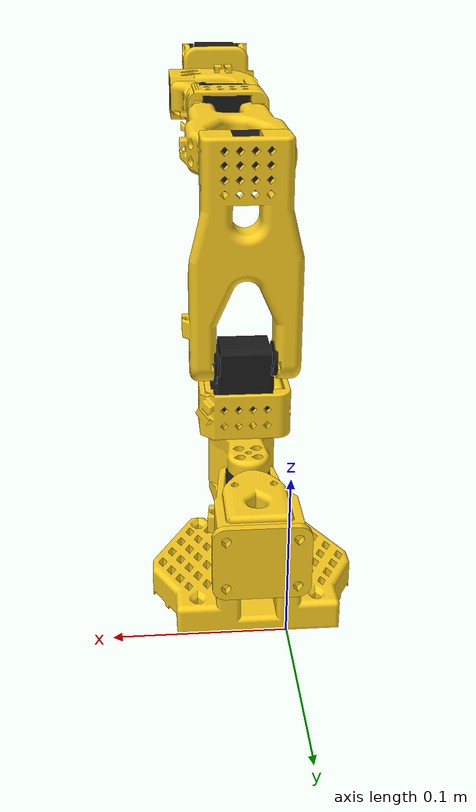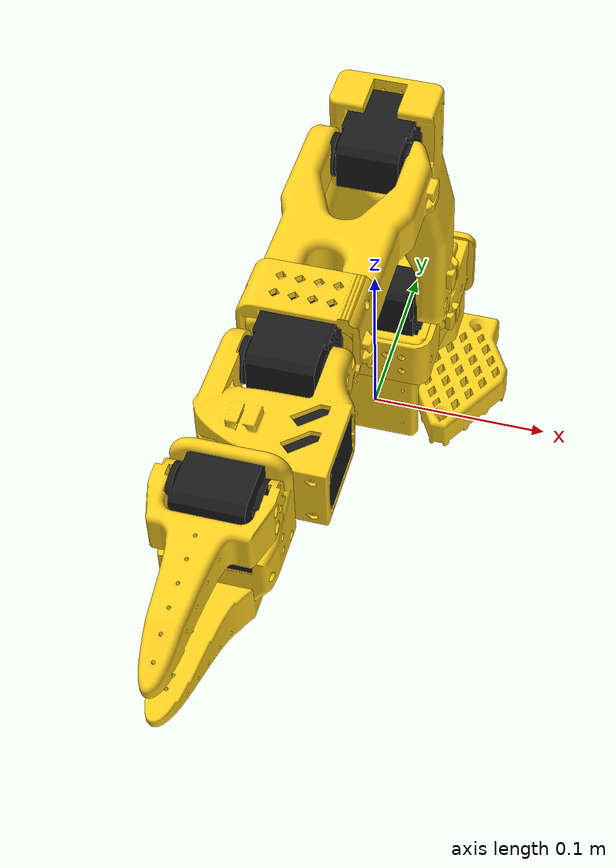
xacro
<?xml version="1.0"?>
<robot xmlns:xacro="http://www.ros.org/wiki/xacro" name="so101_new_calib">
    <xacro:arg name="initial_positions_file" default="initial_positions.yaml" />

    <!-- Import so101_new_calib urdf file -->
    <xacro:include filename="$(find so101)/urdf/so101_new_calib.urdf" />

    <!-- Import control_xacro -->
    <xacro:include filename="so101_new_calib.ros2_control.xacro" />

    <xacro:so101_new_calib_ros2_control name="FakeSystem" initial_positions_file="$(arg initial_positions_file)"/>

</robot>

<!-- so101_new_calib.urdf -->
<robot name="so101_new_calib">
  <!--Generated by RobotCAD, a ROS Workbench for FreeCAD (https://github.com/drfenixion/freecad.robotcad)-->
    <link name="world"/>
  <joint name="base_fixed_to_world" type="fixed">
    <parent link="world"/>
    <child link="base"/>
    <origin xyz="0 0 0" rpy="0 0 0"/>
  </joint>
  <link name="base">
    <visual>
      <!--visual_base_/base_visual.-->
      <origin rpy="1.5708000000000002 0 0" xyz="0.0206915 0.0221255 0.0300817"/>
      <geometry>
        <mesh filename="package://so101/meshes/base_motor_holder_so101_v1_stl.dae"/>
      </geometry>
    </visual>
    <visual>
      <!--visual_base_/base_visual001.-->
      <origin rpy="1.5707999999999998 0 0" xyz="0.0207909 0.0221255 0.0300817"/>
      <geometry>
        <mesh filename="package://so101/meshes/base_so101_v2_stl.dae"/>
      </geometry>
    </visual>
    <visual>
      <!--visual_base_/base_visual002.-->
      <origin rpy="0 0 -1.5708000000000004" xyz="0.0207909 -0.0105745 0.0761817"/>
      <geometry>
        <mesh filename="package://so101/meshes/sts3215_03a_v1_stl.dae"/>
      </geometry>
    </visual>
    <visual>
      <!--visual_base_/base_visual003.-->
      <origin rpy="1.5708000000000002 0 0" xyz="0.0205915 0.0467435 0.0798817"/>
      <geometry>
        <mesh filename="package://so101/meshes/waveshare_mounting_plate_so101_v2_stl.dae"/>
      </geometry>
    </visual>
    <collision>
      <!--col_base_/base_collision.-->
      <origin rpy="1.5708000000000002 0 0" xyz="0.0206915 0.0221255 0.0300817"/>
      <geometry>
        <mesh filename="package://so101/meshes/base_motor_holder_so101_v1_stl.dae"/>
      </geometry>
    </collision>
    <collision>
      <!--col_base_/base_collision001.-->
      <origin rpy="1.5707999999999998 0 0" xyz="0.0207909 0.0221255 0.0300817"/>
      <geometry>
        <mesh filename="package://so101/meshes/base_so101_v2_stl.dae"/>
      </geometry>
    </collision>
    <collision>
      <!--col_base_/base_collision002.-->
      <origin rpy="0 0 -1.5708000000000004" xyz="0.0207909 -0.0105745 0.0761817"/>
      <geometry>
        <mesh filename="package://so101/meshes/sts3215_03a_v1_stl.dae"/>
      </geometry>
    </collision>
    <collision>
      <!--col_base_/base_collision003.-->
      <origin rpy="1.5708000000000002 0 0" xyz="0.0205915 0.0467435 0.0798817"/>
      <geometry>
        <mesh filename="package://so101/meshes/waveshare_mounting_plate_so101_v2_stl.dae"/>
      </geometry>
    </collision>
    <inertial>
      <mass value="0.147"/>
      <origin rpy="0 0 0" xyz="0.020739 0.00204287 0.065966"/>
      <inertia ixx="0.000136117" ixy="4.59787e-07" ixz="9.75275e-08" iyy="0.000114686" iyz="-4.97151e-06" izz="0.000130364"/>
    </inertial>
  </link>
  <link name="shoulder">
    <visual>
      <!--visual_shoulder_/shoulder_visual.-->
      <origin rpy="-1.5707926536217434 1.570792653589793 3.1415926535595684" xyz="-0.0303992 0.000422241 -0.0417"/>
      <geometry>
        <mesh filename="package://so101/meshes/sts3215_03a_v1_stl.dae"/>
      </geometry>
    </visual>
    <visual>
      <!--visual_shoulder_/shoulder_visual001.-->
      <origin rpy="-1.5707926536217436 -1.5707926535897923 3.1415926535746808" xyz="-0.0675992 -0.000177759 0.0158499"/>
      <geometry>
        <mesh filename="package://so101/meshes/motor_holder_so101_base_v1_stl.dae"/>
      </geometry>
    </visual>
    <visual>
      <!--visual_shoulder_/shoulder_visual002.-->
      <origin rpy="-1.5708000000000004 0 0" xyz="0.0122008 2.22413e-05 0.0464"/>
      <geometry>
        <mesh filename="package://so101/meshes/rotation_pitch_so101_v1_stl.dae"/>
      </geometry>
    </visual>
    <collision>
      <!--col_shoulder_/shoulder_collision.-->
      <origin rpy="-1.5707926536217434 1.570792653589793 3.1415926535595684" xyz="-0.0303992 0.000422241 -0.0417"/>
      <geometry>
        <mesh filename="package://so101/meshes/sts3215_03a_v1_stl.dae"/>
      </geometry>
    </collision>
    <collision>
      <!--col_shoulder_/shoulder_collision001.-->
      <origin rpy="-1.5707926536217436 -1.5707926535897923 3.1415926535746808" xyz="-0.0675992 -0.000177759 0.0158499"/>
      <geometry>
        <mesh filename="package://so101/meshes/motor_holder_so101_base_v1_stl.dae"/>
      </geometry>
    </collision>
    <collision>
      <!--col_shoulder_/shoulder_collision002.-->
      <origin rpy="-1.5708000000000004 0 0" xyz="0.0122008 2.22413e-05 0.0464"/>
      <geometry>
        <mesh filename="package://so101/meshes/rotation_pitch_so101_v1_stl.dae"/>
      </geometry>
    </collision>
    <inertial>
      <mass value="0.100006"/>
      <origin rpy="0 0 0" xyz="-0.0307604 -1.66727e-05 -0.0252713"/>
      <inertia ixx="8.3759e-05" ixy="7.55525e-08" ixz="-1.16342e-06" iyy="8.10403e-05" iyz="1.54663e-07" izz="2.39783e-05"/>
    </inertial>
  </link>
  <link name="upper_arm">
    <visual>
      <!--visual_upper_arm_/upper_arm_visual.-->
      <origin rpy="-3.14159 0 -1.5708000000000004" xyz="-0.11257 -0.0155 0.0187"/>
      <geometry>
        <mesh filename="package://so101/meshes/sts3215_03a_v1_stl.dae"/>
      </geometry>
    </visual>
    <visual>
      <!--visual_upper_arm_/upper_arm_visual001.-->
      <origin rpy="3.14159 0 0" xyz="-0.065085 0.012 0.0182"/>
      <geometry>
        <mesh filename="package://so101/meshes/upper_arm_so101_v1_stl.dae"/>
      </geometry>
    </visual>
    <collision>
      <!--col_upper_arm_/upper_arm_collision.-->
      <origin rpy="-3.14159 0 -1.5708000000000004" xyz="-0.11257 -0.0155 0.0187"/>
      <geometry>
        <mesh filename="package://so101/meshes/sts3215_03a_v1_stl.dae"/>
      </geometry>
    </collision>
    <collision>
      <!--col_upper_arm_/upper_arm_collision001.-->
      <origin rpy="3.14159 0 0" xyz="-0.065085 0.012 0.0182"/>
      <geometry>
        <mesh filename="package://so101/meshes/upper_arm_so101_v1_stl.dae"/>
      </geometry>
    </collision>
    <inertial>
      <mass value="0.103"/>
      <origin rpy="0 0 0" xyz="-0.0898471 -0.00838224 0.0184089"/>
      <inertia ixx="4.08002e-05" ixy="-1.97819e-05" ixz="-4.03016e-08" iyy="0.000147318" iyz="8.97326e-09" izz="0.000142487"/>
    </inertial>
  </link>
  <link name="lower_arm">
    <visual>
      <!--visual_lower_arm_/lower_arm_visual.-->
      <origin rpy="-3.1415900000000008 0 0" xyz="-0.0648499 -0.032 0.0182"/>
      <geometry>
        <mesh filename="package://so101/meshes/under_arm_so101_v1_stl.dae"/>
      </geometry>
    </visual>
    <visual>
      <!--visual_lower_arm_/lower_arm_visual001.-->
      <origin rpy="-3.1415900000000008 0 0" xyz="-0.0648499 -0.032 0.018"/>
      <geometry>
        <mesh filename="package://so101/meshes/motor_holder_so101_wrist_v1_stl.dae"/>
      </geometry>
    </visual>
    <visual>
      <!--visual_lower_arm_/lower_arm_visual002.-->
      <origin rpy="-3.14159 0 -3.14159" xyz="-0.1224 0.0052 0.0187"/>
      <geometry>
        <mesh filename="package://so101/meshes/sts3215_03a_v1_stl.dae"/>
      </geometry>
    </visual>
    <collision>
      <!--col_lower_arm_/lower_arm_collision.-->
      <origin rpy="-3.1415900000000008 0 0" xyz="-0.0648499 -0.032 0.0182"/>
      <geometry>
        <mesh filename="package://so101/meshes/under_arm_so101_v1_stl.dae"/>
      </geometry>
    </collision>
    <collision>
      <!--col_lower_arm_/lower_arm_collision001.-->
      <origin rpy="-3.1415900000000008 0 0" xyz="-0.0648499 -0.032 0.018"/>
      <geometry>
        <mesh filename="package://so101/meshes/motor_holder_so101_wrist_v1_stl.dae"/>
      </geometry>
    </collision>
    <collision>
      <!--col_lower_arm_/lower_arm_collision002.-->
      <origin rpy="-3.14159 0 -3.14159" xyz="-0.1224 0.0052 0.0187"/>
      <geometry>
        <mesh filename="package://so101/meshes/sts3215_03a_v1_stl.dae"/>
      </geometry>
    </collision>
    <inertial>
      <mass value="0.104"/>
      <origin rpy="0 0 0" xyz="-0.0980701 0.00324376 0.0182831"/>
      <inertia ixx="2.87438e-05" ixy="7.41152e-06" ixz="1.26409e-06" iyy="0.000159844" iyz="-4.90188e-08" izz="0.00014529"/>
    </inertial>
  </link>
  <link name="wrist">
    <visual>
      <!--visual_wrist_/wrist_visual.-->
      <origin rpy="-1.5707926536217434 1.570792653589793 3.1415926535595684" xyz="0.0 -0.0424 0.0306"/>
      <geometry>
        <mesh filename="package://so101/meshes/sts3215_03a_no_horn_v1_stl.dae"/>
      </geometry>
    </visual>
    <visual>
      <!--visual_wrist_/wrist_visual001.-->
      <origin rpy="1.570792653591519 -1.5707926535897918 -3.1415926535595684" xyz="0.0 -0.028 0.0181"/>
      <geometry>
        <mesh filename="package://so101/meshes/wrist_roll_pitch_so101_v2_stl.dae"/>
      </geometry>
    </visual>
    <collision>
      <!--col_wrist_/wrist_collision.-->
      <origin rpy="-1.5707926536217434 1.570792653589793 3.1415926535595684" xyz="0.0 -0.0424 0.0306"/>
      <geometry>
        <mesh filename="package://so101/meshes/sts3215_03a_no_horn_v1_stl.dae"/>
      </geometry>
    </collision>
    <collision>
      <!--col_wrist_/wrist_collision001.-->
      <origin rpy="1.570792653591519 -1.5707926535897918 -3.1415926535595684" xyz="0.0 -0.028 0.0181"/>
      <geometry>
        <mesh filename="package://so101/meshes/wrist_roll_pitch_so101_v2_stl.dae"/>
      </geometry>
    </collision>
    <inertial>
      <mass value="0.079"/>
      <origin rpy="0 0 0" xyz="-0.000103312 -0.0386143 0.0281156"/>
      <inertia ixx="3.68263e-05" ixy="1.7893e-08" ixz="-5.28128e-08" iyy="2.5391e-05" iyz="3.6412e-06" izz="2.1e-05"/>
    </inertial>
  </link>
  <link name="gripper">
    <visual>
      <!--visual_gripper_/gripper_visual.-->
      <origin rpy="-1.5708000000000004 0 0" xyz="0.0077 0.0001 -0.0234"/>
      <geometry>
        <mesh filename="package://so101/meshes/sts3215_03a_v1_stl.dae"/>
      </geometry>
    </visual>
    <visual>
      <!--visual_gripper_/gripper_visual001.-->
      <origin rpy="-3.1415900000000008 0 0" xyz="0.0 -0.000218214 0.000949706"/>
      <geometry>
        <mesh filename="package://so101/meshes/wrist_roll_follower_so101_v1_stl.dae"/>
      </geometry>
    </visual>
    <collision>
      <!--col_gripper_/gripper_collision.-->
      <origin rpy="-1.5708000000000004 0 0" xyz="0.0077 0.0001 -0.0234"/>
      <geometry>
        <mesh filename="package://so101/meshes/sts3215_03a_v1_stl.dae"/>
      </geometry>
    </collision>
    <collision>
      <!--col_gripper_/gripper_collision001.-->
      <origin rpy="-3.1415900000000008 0 0" xyz="0.0 -0.000218214 0.000949706"/>
      <geometry>
        <mesh filename="package://so101/meshes/wrist_roll_follower_so101_v1_stl.dae"/>
      </geometry>
    </collision>
    <inertial>
      <mass value="0.087"/>
      <origin rpy="0 0 0" xyz="0.000213627 0.000245138 -0.025187"/>
      <inertia ixx="2.75087e-05" ixy="-3.35241e-07" ixz="-5.7352e-06" iyy="4.33657e-05" iyz="-5.17847e-08" izz="3.45059e-05"/>
    </inertial>
  </link>
  <link name="jaw">
    <visual>
      <!--visual_jaw_/jaw_visual.-->
      <origin rpy="0 0 0" xyz="0.0 0.0 0.0189"/>
      <geometry>
        <mesh filename="package://so101/meshes/moving_jaw_so101_v1_stl.dae"/>
      </geometry>
    </visual>
    <collision>
      <!--col_jaw_/jaw_collision.-->
      <origin rpy="0 0 0" xyz="0.0 0.0 0.0189"/>
      <geometry>
        <mesh filename="package://so101/meshes/moving_jaw_so101_v1_stl.dae"/>
      </geometry>
    </collision>
    <inertial>
      <mass value="0.012"/>
      <origin rpy="0 0 0" xyz="-0.00157495 -0.0300244 0.0192755"/>
      <inertia ixx="6.61427e-06" ixy="-3.19807e-07" ixz="-5.90717e-09" iyy="1.89032e-06" iyz="-1.09945e-07" izz="5.28738e-06"/>
    </inertial>
  </link>
  <joint name="_6" type="revolute">
    <parent link="gripper"/>
    <child link="jaw"/>
    <origin rpy="1.5707999999999998 0 0" xyz="0.0202 0.0188 -0.0234"/>
    <axis xyz="0 0 1"/>
    <limit effort="10.0" lower="-0.174533" upper="1.74533" velocity="10.0"/>
  </joint>
  <joint name="_5" type="revolute">
    <parent link="wrist"/>
    <child link="gripper"/>
    <origin rpy="1.5708000000000004 -9.380830012750704e-08 3.14159" xyz="0.0 -0.0611 0.0181"/>
    <axis xyz="0 0 1"/>
    <limit effort="10.0" lower="-2.79253" upper="2.79253" velocity="10.0"/>
  </joint>
  <joint name="_4" type="revolute">
    <parent link="lower_arm"/>
    <child link="wrist"/>
    <origin rpy="0 0 -1.5708000000000004" xyz="-0.1349 0.0052 0.0"/>
    <axis xyz="0 0 1"/>
    <limit effort="10.0" lower="-1.6580600000000003" upper="1.6580600000000003" velocity="10.0"/>
  </joint>
  <joint name="_3" type="revolute">
    <parent link="upper_arm"/>
    <child link="lower_arm"/>
    <origin rpy="0 0 1.5707999999999995" xyz="-0.11257 -0.028 0.0"/>
    <axis xyz="0 0 1"/>
    <limit effort="10.0" lower="-1.74533" upper="1.5708" velocity="10.0"/>
  </joint>
  <joint name="_2" type="revolute">
    <parent link="shoulder"/>
    <child link="upper_arm"/>
    <origin rpy="1.5707926536821932 -1.5707926535897925 3.1415926535595684" xyz="-0.0303992 -0.0182778 -0.0542"/>
    <axis xyz="0 0 1"/>
    <limit effort="10.0" lower="-1.74533" upper="1.74533" velocity="10.0"/>
  </joint>
  <joint name="_1" type="revolute">
    <parent link="base"/>
    <child link="shoulder"/>
    <origin rpy="-3.14159 0 1.5708000000000002" xyz="0.0207909 -0.0230745 0.0948817"/>
    <axis xyz="0 0 1"/>
    <limit effort="10.0" lower="-1.91986" upper="1.91986" velocity="10.0"/>
  </joint>

  <!-- Настройка ros2_control для Gazebo Harmonic -->
  <ros2_control name="GazeboSimSystem" type="system">
    <hardware>
      <plugin>gz_ros2_control/GazeboSimSystem</plugin>
    </hardware>

    <joint name="_1">
      <command_interface name="position">
        <param name="min">-1.91986</param>
        <param name="max">1.91986</param>
      </command_interface>
      <state_interface name="position"/>
      <state_interface name="velocity"/>
    </joint>

    <joint name="_2">
      <command_interface name="position">
        <param name="min">-1.74533</param>
        <param name="max">1.74533</param>
      </command_interface>
      <state_interface name="position"/>
      <state_interface name="velocity"/>
    </joint>

    <joint name="_3">
      <command_interface name="position">
        <param name="min">-1.74533</param>
        <param name="max">1.5708</param>
      </command_interface>
      <state_interface name="position"/>
      <state_interface name="velocity"/>
    </joint>

    <joint name="_4">
      <command_interface name="position">
        <param name="min">-1.65806</param>
        <param name="max">1.65806</param>
      </command_interface>
      <state_interface name="position"/>
      <state_interface name="velocity"/>
    </joint>

    <joint name="_5">
      <command_interface name="position">
        <param name="min">-2.79253</param>
        <param name="max">2.79253</param>
      </command_interface>
      <state_interface name="position"/>
      <state_interface name="velocity"/>
    </joint>

    <joint name="_6">
      <command_interface name="position">
        <param name="min">-0.174533</param>
        <param name="max">1.74533</param>
      </command_interface>
      <state_interface name="position"/>
      <state_interface name="velocity"/>
    </joint>
  </ros2_control>

  <!-- Подключение плагина Gazebo Harmonic для ros2_control -->
  <gazebo>
  <plugin filename="gz_ros2_control-system"
          name="gz_ros2_control::GazeboSimROS2ControlPlugin">
    <parameters>$(find so101)/config/so101_new_calib_controllers.yaml</parameters>
  </plugin>
  </gazebo>
    <gazebo reference="world">
    <static>true</static>
  </gazebo>
</robot>
